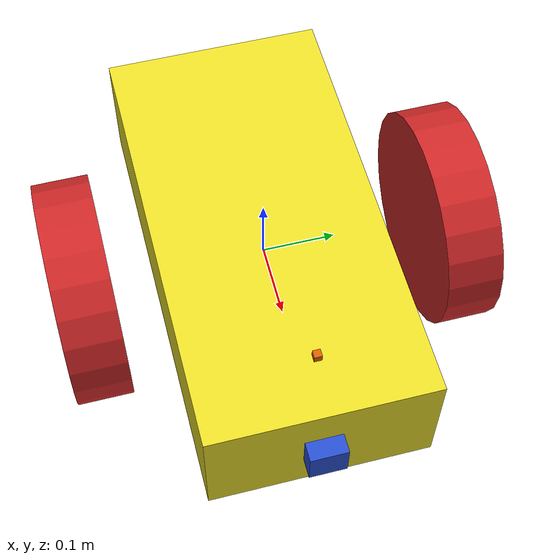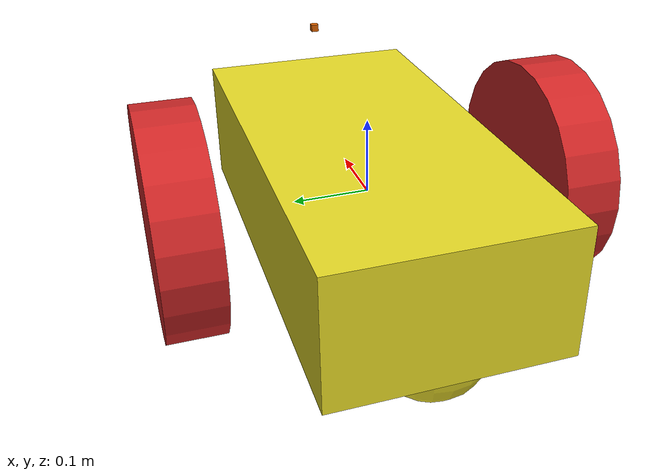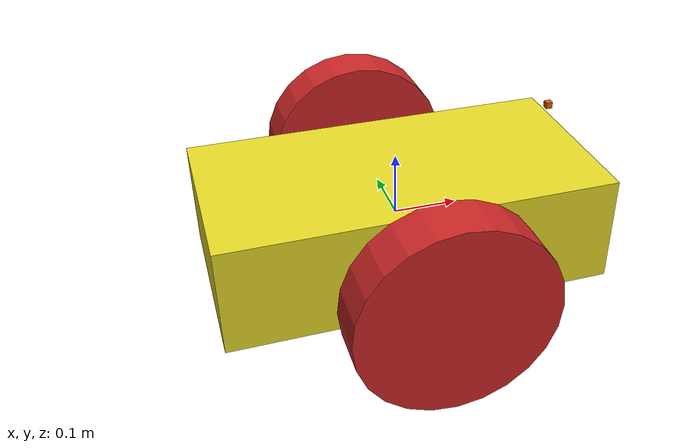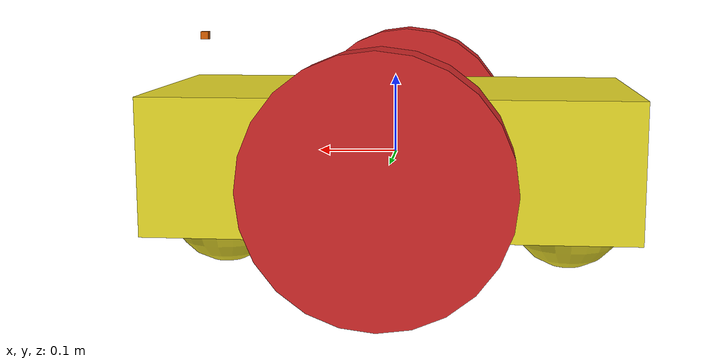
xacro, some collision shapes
<?xml version='1.0'?>

<robot name="my_robot" xmlns:xacro="http://www.ros.org/wiki/xacro">

  <xacro:include filename="$(find my_robot)/urdf/my_robot.gazebo" />

  <link name="robot_footprint"></link>

  <joint name="robot_footprint_joint" type="fixed">
    <origin xyz="0 0 0" rpy="0 0 0" />
    <parent link="robot_footprint"/>
    <child link="chassis" />
  </joint>

  <link name='chassis'>
    <pose>0 0 0.1 0 0 0</pose>

    <inertial>
      <mass value="15.0"/>
      <origin xyz="0.0 0 0" rpy=" 0 0 0"/>
      <inertia
          ixx="0.1" ixy="0" ixz="0"
          iyy="0.1" iyz="0"
          izz="0.1"
      />
    </inertial>

    <collision name='chassis_collision'>
      <origin xyz="0 0 0" rpy=" 0 0 0"/>
      <geometry>
        <box size=".6 .3 .17"/>
      </geometry>
    </collision>

    <visual name='chassis_visual'>
      <origin xyz="0 0 0" rpy=" 0 0 0"/>
      <geometry>
        <box size=".6 .3 .17"/>
      </geometry>
    </visual>

    <collision name='back_caster_collision'>
      <origin xyz="-0.225 0 -0.075" rpy=" 0 0 0"/>
      <geometry>
        <sphere radius="0.0749"/>
      </geometry>
    </collision>

    <visual name='back_caster_visual'>
      <origin xyz="-0.225 0 -0.075" rpy=" 0 0 0"/>
      <geometry>
        <sphere radius="0.075"/>
      </geometry>
    </visual>

    <collision name='front_caster_collision'>
      <origin xyz="0.225 0 -0.075" rpy=" 0 0 0"/>
      <geometry>
        <sphere radius="0.0749"/>
      </geometry>
    </collision>

    <visual name='front_caster_visual'>
      <origin xyz="0.225 0 -0.075" rpy=" 0 0 0"/>
      <geometry>
        <sphere radius="0.075"/>
      </geometry>
    </visual>

  </link>

<!-- Add two wheels -->

<link name='left_wheel'>

    <inertial>
      <mass value="5.0"/>
      <origin xyz="0 0 0" rpy="0 1.5707 1.5707"/>
      <inertia
          ixx="0.1" ixy="0" ixz="0"
          iyy="0.1" iyz="0"
          izz="0.1"
      />
    </inertial>

    <collision name='left_wheel_collision'>
      <origin xyz="0 0 0" rpy=" 0 1.5707 1.5707"/>
      <geometry>
        <cylinder length="0.075" radius="0.15"/>
      </geometry>
    </collision>

    <visual name='left_wheel_visual'>
      <origin xyz="0 0 0" rpy=" 0 1.5707 1.5707"/>
      <geometry>
        <cylinder length="0.075" radius="0.15"/>
      </geometry>
    </visual>
  </link>

<joint type="continuous" name="left_wheel_hinge">
	<origin xyz="0 0.25 0" rpy="0 0 0"/>
	<child link="left_wheel"/>
	<parent link="chassis"/>
	<axis xyz="0 1 0" rpy="0 0 0"/>
	<limit effort="10000" velocity="1000"/>
	<dynamics damping="1.0" friction="1.0"/>
</joint>

  <link name='right_wheel'>

    <inertial>
      <mass value="5.0"/>
      <origin xyz="0 0 0" rpy="0 1.5707 1.5707"/>
      <inertia
          ixx="0.1" ixy="0" ixz="0"
          iyy="0.1" iyz="0"
          izz="0.1"
      />
    </inertial>

    <collision name='right_wheel_collision'>
      <origin xyz="0 0 0" rpy=" 0 1.5707 1.5707"/>
      <geometry>
        <cylinder length="0.075" radius="0.15"/>
      </geometry>
    </collision>

    <visual name='right_wheel_visual'>
      <origin xyz="0 0 0" rpy=" 0 1.5707 1.5707"/>
      <geometry>
        <cylinder length="0.075" radius="0.15"/>
      </geometry>
    </visual>

</link>

<joint type="continuous" name="right_wheel_hinge">
    	<origin xyz="0 -0.25 0" rpy="0 0 0"/>
	<child link="right_wheel"/>
	<parent link="chassis"/>
	<axis xyz="0 1 0" rpy="0 0 0"/>
	<limit effort="10000" velocity="1000"/>
	<dynamics damping="1.0" friction="1.0"/>
</joint>

  <!-- Add camera -->

  <link name='camera'>

    <inertial>
      <mass value="0.1"/>
      <origin xyz="0.0 0 0" rpy=" 0 0 0"/>
      <box_inertia m="0.1" x="0.05" y="0.05" z="0.05"/>
      <inertia
          ixx="1e-6" ixy="0" ixz="0"
          iyy="1e-6" iyz="0"
          izz="1e-6"
      />
    </inertial>

    <collision name='camera_collision'>
      <origin xyz="0 0 0" rpy=" 0 0 0"/>
      <geometry>
        <box size=".05 .05 .05"/>
      </geometry>
    </collision>

    <visual name='camera_visual'>
      <origin xyz="0 0 0" rpy=" 0 0 0"/>
      <geometry>
        <box size=".05 .05 .05"/>
      </geometry>
    </visual>

  </link>

  <joint type="fixed" name="camera_joint">
    <origin xyz="0.3 0 0" rpy="0 0 0"/>
    <child link="camera"/>
    <parent link="chassis"/>
    <axis xyz="0 1 0" rpy="0 0 0"/>
  </joint>

  <!-- Add Lidar -->

  <link name='hokuyo'>

    <inertial>
      <mass value="1e-5"/>
      <origin xyz="0.0 0 0" rpy=" 0 0 0"/>
      <inertia
          ixx="1e-6" ixy="0" ixz="0"
          iyy="1e-6" iyz="0"
          izz="1e-6"
      />
    </inertial>

    <collision name='hokuyo_collision'>
      <origin xyz="0 0 0" rpy=" 0 0 0"/>
      <geometry>
        <box size=".01 .01 .01"/>
      </geometry>
    </collision>

    <visual name='hokuyo_visual'>
      <origin xyz="0 0 0" rpy=" 0 0 0"/>
      <geometry>
        <mesh filename="package://my_robot/meshes/hokuyo.dae"/>
      </geometry>
    </visual>

  </link>

  <joint type="fixed" name="hokuyo_joint">
    <origin xyz="0.25 0 .15" rpy="0 0 0"/>
    <child link="hokuyo"/>
    <parent link="chassis"/>
    <axis xyz="0 1 0" rpy="0 0 0"/>
  </joint>

<gazebo reference="left_wheel">
    <material>Gazebo/Red</material>
</gazebo>
<gazebo reference="right_wheel">
    <material>Gazebo/Red</material>
</gazebo>
<gazebo reference="chassis">
    <material>Gazebo/Yellow</material>
</gazebo>
<gazebo reference="camera">
    <material>Gazebo/Blue</material>
</gazebo>

</robot>
